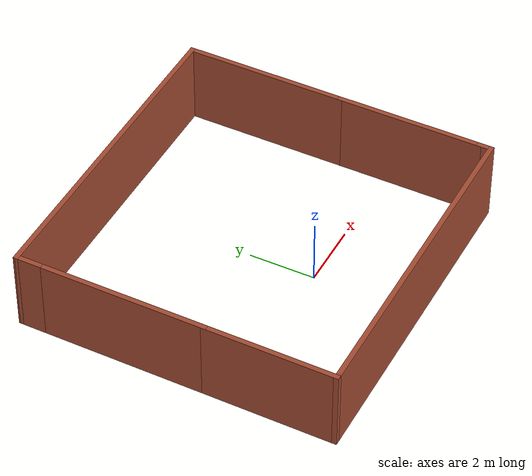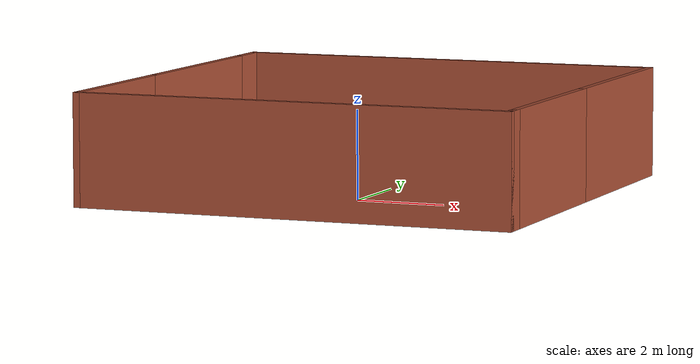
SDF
<?xml version='1.0'?>
<sdf version='1.7'>
  <model name='custom_world'>
    <pose>-0.275 1.565 0 0 -0 0</pose>
    <link name='Wall_31'>
      <collision name='Wall_31_Collision'>
        <geometry>
          <box>
            <size>10 0.15 2.5</size>
          </box>
        </geometry>
        <pose>0 0 1.25 0 -0 0</pose>
      </collision>
      <visual name='Wall_31_Visual'>
        <pose>0 0 1.25 0 -0 0</pose>
        <geometry>
          <box>
            <size>10 0.15 2.5</size>
          </box>
        </geometry>
        <material>
          <script>
            <uri>file://media/materials/scripts/gazebo.material</uri>
            <name>Gazebo/Bricks</name>
          </script>
          <ambient>1 1 1 1</ambient>
        </material>
        <meta>
          <layer>0</layer>
        </meta>
      </visual>
      <pose>-0 4.775 0 0 -0 0</pose>
    </link>
    <link name='Wall_34'>
      <collision name='Wall_34_Collision'>
        <geometry>
          <box>
            <size>5 0.15 2.5</size>
          </box>
        </geometry>
        <pose>0 0 1.25 0 -0 0</pose>
      </collision>
      <visual name='Wall_34_Visual'>
        <pose>0 0 1.25 0 -0 0</pose>
        <geometry>
          <box>
            <size>5 0.15 2.5</size>
          </box>
        </geometry>
        <material>
          <script>
            <uri>file://media/materials/scripts/gazebo.material</uri>
            <name>Gazebo/Bricks</name>
          </script>
          <ambient>1 1 1 1</ambient>
        </material>
        <meta>
          <layer>0</layer>
        </meta>
      </visual>
      <pose>4.925 2.35 0 0 -0 -1.5708</pose>
    </link>
    <link name='Wall_36'>
      <collision name='Wall_36_Collision'>
        <geometry>
          <box>
            <size>4.5 0.15 2.5</size>
          </box>
        </geometry>
        <pose>0 0 1.25 0 -0 0</pose>
      </collision>
      <visual name='Wall_36_Visual'>
        <pose>0 0 1.25 0 -0 0</pose>
        <geometry>
          <box>
            <size>4.5 0.15 2.5</size>
          </box>
        </geometry>
        <material>
          <script>
            <uri>file://media/materials/scripts/gazebo.material</uri>
            <name>Gazebo/Bricks</name>
          </script>
          <ambient>1 1 1 1</ambient>
        </material>
        <meta>
          <layer>0</layer>
        </meta>
      </visual>
      <pose>4.925 -2.25 0 0 -0 -1.5708</pose>
    </link>
    <link name='Wall_38'>
      <collision name='Wall_38_Collision'>
        <geometry>
          <box>
            <size>0.5 0.15 2.5</size>
          </box>
        </geometry>
        <pose>0 0 1.25 0 -0 0</pose>
      </collision>
      <visual name='Wall_38_Visual'>
        <pose>0 0 1.25 0 -0 0</pose>
        <geometry>
          <box>
            <size>0.5 0.15 2.5</size>
          </box>
        </geometry>
        <material>
          <script>
            <uri>file://media/materials/scripts/gazebo.material</uri>
            <name>Gazebo/Bricks</name>
          </script>
          <ambient>1 1 1 1</ambient>
        </material>
        <meta>
          <layer>0</layer>
        </meta>
      </visual>
      <pose>4.925 -4.6 0 0 -0 -1.5708</pose>
    </link>
    <link name='Wall_39'>
      <collision name='Wall_39_Collision'>
        <geometry>
          <box>
            <size>10 0.15 2.5</size>
          </box>
        </geometry>
        <pose>0 0 1.25 0 -0 0</pose>
      </collision>
      <visual name='Wall_39_Visual'>
        <pose>0 0 1.25 0 -0 0</pose>
        <geometry>
          <box>
            <size>10 0.15 2.5</size>
          </box>
        </geometry>
        <material>
          <script>
            <uri>file://media/materials/scripts/gazebo.material</uri>
            <name>Gazebo/Bricks</name>
          </script>
          <ambient>1 1 1 1</ambient>
        </material>
        <meta>
          <layer>0</layer>
        </meta>
      </visual>
      <pose>-0 -4.775 0 0 -0 3.14159</pose>
    </link>
    <link name='Wall_42'>
      <collision name='Wall_42_Collision'>
        <geometry>
          <box>
            <size>4 0.15 2.5</size>
          </box>
        </geometry>
        <pose>0 0 1.25 0 -0 0</pose>
      </collision>
      <visual name='Wall_42_Visual'>
        <pose>0 0 1.25 0 -0 0</pose>
        <geometry>
          <box>
            <size>4 0.15 2.5</size>
          </box>
        </geometry>
        <material>
          <script>
            <uri>file://media/materials/scripts/gazebo.material</uri>
            <name>Gazebo/Bricks</name>
          </script>
          <ambient>1 1 1 1</ambient>
        </material>
        <meta>
          <layer>0</layer>
        </meta>
      </visual>
      <pose>-4.925 -2.85 0 0 -0 1.5708</pose>
    </link>
    <link name='Wall_44'>
      <collision name='Wall_44_Collision'>
        <geometry>
          <box>
            <size>5 0.15 2.5</size>
          </box>
        </geometry>
        <pose>0 0 1.25 0 -0 0</pose>
      </collision>
      <visual name='Wall_44_Visual'>
        <pose>0 0 1.25 0 -0 0</pose>
        <geometry>
          <box>
            <size>5 0.15 2.5</size>
          </box>
        </geometry>
        <material>
          <script>
            <uri>file://media/materials/scripts/gazebo.material</uri>
            <name>Gazebo/Bricks</name>
          </script>
          <ambient>1 1 1 1</ambient>
        </material>
        <meta>
          <layer>0</layer>
        </meta>
      </visual>
      <pose>-4.925 1.5 0 0 -0 1.5708</pose>
    </link>
    <link name='Wall_46'>
      <collision name='Wall_46_Collision'>
        <geometry>
          <box>
            <size>1 0.15 2.5</size>
          </box>
        </geometry>
        <pose>0 0 1.25 0 -0 0</pose>
      </collision>
      <visual name='Wall_46_Visual'>
        <pose>0 0 1.25 0 -0 0</pose>
        <geometry>
          <box>
            <size>1 0.15 2.5</size>
          </box>
        </geometry>
        <material>
          <script>
            <uri>file://media/materials/scripts/gazebo.material</uri>
            <name>Gazebo/Bricks</name>
          </script>
          <ambient>1 1 1 1</ambient>
        </material>
        <meta>
          <layer>0</layer>
        </meta>
      </visual>
      <pose>-4.925 4.35 0 0 -0 1.5708</pose>
    </link>
    <static>1</static>
  </model>
</sdf>
